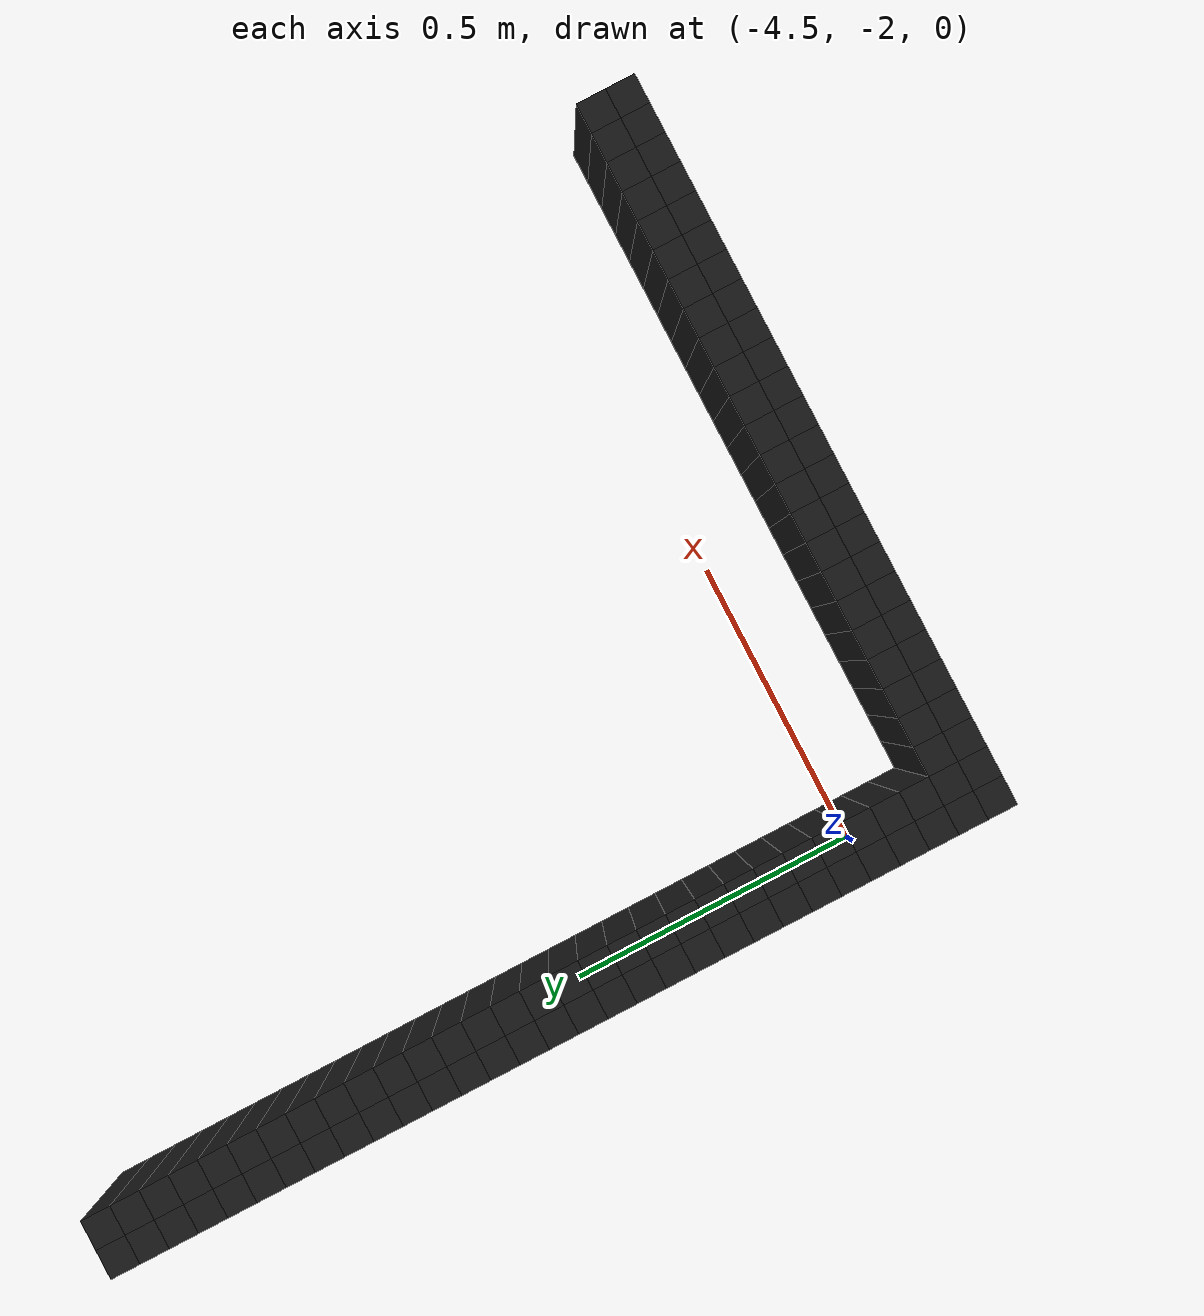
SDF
<sdf version="1.6">
 <model name="obstacle_0_181">
  <pose>-4.51 -0.7000000000000002 1.0 0 0 0</pose>
  <static>true</static>
  <link name="box_link">
   <collision name="box_collision"><geometry><box><size>0.05 0.05 2.0</size></box></geometry></collision>
   <visual name="box_visual">
    <geometry><box><size>0.05 0.05 2.0</size></box></geometry>
    <material><ambient>0 0 0 1</ambient><diffuse>0.1 0.1 0.1 1</diffuse></material>
   </visual>
  </link>
 </model>
 <model name="obstacle_1_181">
  <pose>-4.46 -0.7000000000000002 1.0 0 0 0</pose>
  <static>true</static>
  <link name="box_link">
   <collision name="box_collision"><geometry><box><size>0.05 0.05 2.0</size></box></geometry></collision>
   <visual name="box_visual">
    <geometry><box><size>0.05 0.05 2.0</size></box></geometry>
    <material><ambient>0 0 0 1</ambient><diffuse>0.1 0.1 0.1 1</diffuse></material>
   </visual>
  </link>
 </model>
 <model name="obstacle_0_182">
  <pose>-4.51 -0.75 1.0 0 0 0</pose>
  <static>true</static>
  <link name="box_link">
   <collision name="box_collision"><geometry><box><size>0.05 0.05 2.0</size></box></geometry></collision>
   <visual name="box_visual">
    <geometry><box><size>0.05 0.05 2.0</size></box></geometry>
    <material><ambient>0 0 0 1</ambient><diffuse>0.1 0.1 0.1 1</diffuse></material>
   </visual>
  </link>
 </model>
 <model name="obstacle_1_182">
  <pose>-4.46 -0.75 1.0 0 0 0</pose>
  <static>true</static>
  <link name="box_link">
   <collision name="box_collision"><geometry><box><size>0.05 0.05 2.0</size></box></geometry></collision>
   <visual name="box_visual">
    <geometry><box><size>0.05 0.05 2.0</size></box></geometry>
    <material><ambient>0 0 0 1</ambient><diffuse>0.1 0.1 0.1 1</diffuse></material>
   </visual>
  </link>
 </model>
 <model name="obstacle_0_183">
  <pose>-4.51 -0.8 1.0 0 0 0</pose>
  <static>true</static>
  <link name="box_link">
   <collision name="box_collision"><geometry><box><size>0.05 0.05 2.0</size></box></geometry></collision>
   <visual name="box_visual">
    <geometry><box><size>0.05 0.05 2.0</size></box></geometry>
    <material><ambient>0 0 0 1</ambient><diffuse>0.1 0.1 0.1 1</diffuse></material>
   </visual>
  </link>
 </model>
 <model name="obstacle_1_183">
  <pose>-4.46 -0.8 1.0 0 0 0</pose>
  <static>true</static>
  <link name="box_link">
   <collision name="box_collision"><geometry><box><size>0.05 0.05 2.0</size></box></geometry></collision>
   <visual name="box_visual">
    <geometry><box><size>0.05 0.05 2.0</size></box></geometry>
    <material><ambient>0 0 0 1</ambient><diffuse>0.1 0.1 0.1 1</diffuse></material>
   </visual>
  </link>
 </model>
 <model name="obstacle_0_184">
  <pose>-4.51 -0.8500000000000001 1.0 0 0 0</pose>
  <static>true</static>
  <link name="box_link">
   <collision name="box_collision"><geometry><box><size>0.05 0.05 2.0</size></box></geometry></collision>
   <visual name="box_visual">
    <geometry><box><size>0.05 0.05 2.0</size></box></geometry>
    <material><ambient>0 0 0 1</ambient><diffuse>0.1 0.1 0.1 1</diffuse></material>
   </visual>
  </link>
 </model>
 <model name="obstacle_1_184">
  <pose>-4.46 -0.8500000000000001 1.0 0 0 0</pose>
  <static>true</static>
  <link name="box_link">
   <collision name="box_collision"><geometry><box><size>0.05 0.05 2.0</size></box></geometry></collision>
   <visual name="box_visual">
    <geometry><box><size>0.05 0.05 2.0</size></box></geometry>
    <material><ambient>0 0 0 1</ambient><diffuse>0.1 0.1 0.1 1</diffuse></material>
   </visual>
  </link>
 </model>
 <model name="obstacle_0_185">
  <pose>-4.51 -0.9000000000000001 1.0 0 0 0</pose>
  <static>true</static>
  <link name="box_link">
   <collision name="box_collision"><geometry><box><size>0.05 0.05 2.0</size></box></geometry></collision>
   <visual name="box_visual">
    <geometry><box><size>0.05 0.05 2.0</size></box></geometry>
    <material><ambient>0 0 0 1</ambient><diffuse>0.1 0.1 0.1 1</diffuse></material>
   </visual>
  </link>
 </model>
 <model name="obstacle_1_185">
  <pose>-4.46 -0.9000000000000001 1.0 0 0 0</pose>
  <static>true</static>
  <link name="box_link">
   <collision name="box_collision"><geometry><box><size>0.05 0.05 2.0</size></box></geometry></collision>
   <visual name="box_visual">
    <geometry><box><size>0.05 0.05 2.0</size></box></geometry>
    <material><ambient>0 0 0 1</ambient><diffuse>0.1 0.1 0.1 1</diffuse></material>
   </visual>
  </link>
 </model>
 <model name="obstacle_0_186">
  <pose>-4.51 -0.9500000000000002 1.0 0 0 0</pose>
  <static>true</static>
  <link name="box_link">
   <collision name="box_collision"><geometry><box><size>0.05 0.05 2.0</size></box></geometry></collision>
   <visual name="box_visual">
    <geometry><box><size>0.05 0.05 2.0</size></box></geometry>
    <material><ambient>0 0 0 1</ambient><diffuse>0.1 0.1 0.1 1</diffuse></material>
   </visual>
  </link>
 </model>
 <model name="obstacle_1_186">
  <pose>-4.46 -0.9500000000000002 1.0 0 0 0</pose>
  <static>true</static>
  <link name="box_link">
   <collision name="box_collision"><geometry><box><size>0.05 0.05 2.0</size></box></geometry></collision>
   <visual name="box_visual">
    <geometry><box><size>0.05 0.05 2.0</size></box></geometry>
    <material><ambient>0 0 0 1</ambient><diffuse>0.1 0.1 0.1 1</diffuse></material>
   </visual>
  </link>
 </model>
 <model name="obstacle_0_187">
  <pose>-4.51 -1.0 1.0 0 0 0</pose>
  <static>true</static>
  <link name="box_link">
   <collision name="box_collision"><geometry><box><size>0.05 0.05 2.0</size></box></geometry></collision>
   <visual name="box_visual">
    <geometry><box><size>0.05 0.05 2.0</size></box></geometry>
    <material><ambient>0 0 0 1</ambient><diffuse>0.1 0.1 0.1 1</diffuse></material>
   </visual>
  </link>
 </model>
 <model name="obstacle_1_187">
  <pose>-4.46 -1.0 1.0 0 0 0</pose>
  <static>true</static>
  <link name="box_link">
   <collision name="box_collision"><geometry><box><size>0.05 0.05 2.0</size></box></geometry></collision>
   <visual name="box_visual">
    <geometry><box><size>0.05 0.05 2.0</size></box></geometry>
    <material><ambient>0 0 0 1</ambient><diffuse>0.1 0.1 0.1 1</diffuse></material>
   </visual>
  </link>
 </model>
 <model name="obstacle_0_188">
  <pose>-4.51 -1.05 1.0 0 0 0</pose>
  <static>true</static>
  <link name="box_link">
   <collision name="box_collision"><geometry><box><size>0.05 0.05 2.0</size></box></geometry></collision>
   <visual name="box_visual">
    <geometry><box><size>0.05 0.05 2.0</size></box></geometry>
    <material><ambient>0 0 0 1</ambient><diffuse>0.1 0.1 0.1 1</diffuse></material>
   </visual>
  </link>
 </model>
 <model name="obstacle_1_188">
  <pose>-4.46 -1.05 1.0 0 0 0</pose>
  <static>true</static>
  <link name="box_link">
   <collision name="box_collision"><geometry><box><size>0.05 0.05 2.0</size></box></geometry></collision>
   <visual name="box_visual">
    <geometry><box><size>0.05 0.05 2.0</size></box></geometry>
    <material><ambient>0 0 0 1</ambient><diffuse>0.1 0.1 0.1 1</diffuse></material>
   </visual>
  </link>
 </model>
 <model name="obstacle_0_189">
  <pose>-4.51 -1.1 1.0 0 0 0</pose>
  <static>true</static>
  <link name="box_link">
   <collision name="box_collision"><geometry><box><size>0.05 0.05 2.0</size></box></geometry></collision>
   <visual name="box_visual">
    <geometry><box><size>0.05 0.05 2.0</size></box></geometry>
    <material><ambient>0 0 0 1</ambient><diffuse>0.1 0.1 0.1 1</diffuse></material>
   </visual>
  </link>
 </model>
 <model name="obstacle_1_189">
  <pose>-4.46 -1.1 1.0 0 0 0</pose>
  <static>true</static>
  <link name="box_link">
   <collision name="box_collision"><geometry><box><size>0.05 0.05 2.0</size></box></geometry></collision>
   <visual name="box_visual">
    <geometry><box><size>0.05 0.05 2.0</size></box></geometry>
    <material><ambient>0 0 0 1</ambient><diffuse>0.1 0.1 0.1 1</diffuse></material>
   </visual>
  </link>
 </model>
 <model name="obstacle_0_190">
  <pose>-4.51 -1.1500000000000001 1.0 0 0 0</pose>
  <static>true</static>
  <link name="box_link">
   <collision name="box_collision"><geometry><box><size>0.05 0.05 2.0</size></box></geometry></collision>
   <visual name="box_visual">
    <geometry><box><size>0.05 0.05 2.0</size></box></geometry>
    <material><ambient>0 0 0 1</ambient><diffuse>0.1 0.1 0.1 1</diffuse></material>
   </visual>
  </link>
 </model>
 <model name="obstacle_1_190">
  <pose>-4.46 -1.1500000000000001 1.0 0 0 0</pose>
  <static>true</static>
  <link name="box_link">
   <collision name="box_collision"><geometry><box><size>0.05 0.05 2.0</size></box></geometry></collision>
   <visual name="box_visual">
    <geometry><box><size>0.05 0.05 2.0</size></box></geometry>
    <material><ambient>0 0 0 1</ambient><diffuse>0.1 0.1 0.1 1</diffuse></material>
   </visual>
  </link>
 </model>
 <model name="obstacle_0_191">
  <pose>-4.51 -1.2000000000000002 1.0 0 0 0</pose>
  <static>true</static>
  <link name="box_link">
   <collision name="box_collision"><geometry><box><size>0.05 0.05 2.0</size></box></geometry></collision>
   <visual name="box_visual">
    <geometry><box><size>0.05 0.05 2.0</size></box></geometry>
    <material><ambient>0 0 0 1</ambient><diffuse>0.1 0.1 0.1 1</diffuse></material>
   </visual>
  </link>
 </model>
 <model name="obstacle_1_191">
  <pose>-4.46 -1.2000000000000002 1.0 0 0 0</pose>
  <static>true</static>
  <link name="box_link">
   <collision name="box_collision"><geometry><box><size>0.05 0.05 2.0</size></box></geometry></collision>
   <visual name="box_visual">
    <geometry><box><size>0.05 0.05 2.0</size></box></geometry>
    <material><ambient>0 0 0 1</ambient><diffuse>0.1 0.1 0.1 1</diffuse></material>
   </visual>
  </link>
 </model>
 <model name="obstacle_0_192">
  <pose>-4.51 -1.25 1.0 0 0 0</pose>
  <static>true</static>
  <link name="box_link">
   <collision name="box_collision"><geometry><box><size>0.05 0.05 2.0</size></box></geometry></collision>
   <visual name="box_visual">
    <geometry><box><size>0.05 0.05 2.0</size></box></geometry>
    <material><ambient>0 0 0 1</ambient><diffuse>0.1 0.1 0.1 1</diffuse></material>
   </visual>
  </link>
 </model>
 <model name="obstacle_1_192">
  <pose>-4.46 -1.25 1.0 0 0 0</pose>
  <static>true</static>
  <link name="box_link">
   <collision name="box_collision"><geometry><box><size>0.05 0.05 2.0</size></box></geometry></collision>
   <visual name="box_visual">
    <geometry><box><size>0.05 0.05 2.0</size></box></geometry>
    <material><ambient>0 0 0 1</ambient><diffuse>0.1 0.1 0.1 1</diffuse></material>
   </visual>
  </link>
 </model>
 <model name="obstacle_0_193">
  <pose>-4.51 -1.3000000000000003 1.0 0 0 0</pose>
  <static>true</static>
  <link name="box_link">
   <collision name="box_collision"><geometry><box><size>0.05 0.05 2.0</size></box></geometry></collision>
   <visual name="box_visual">
    <geometry><box><size>0.05 0.05 2.0</size></box></geometry>
    <material><ambient>0 0 0 1</ambient><diffuse>0.1 0.1 0.1 1</diffuse></material>
   </visual>
  </link>
 </model>
 <model name="obstacle_1_193">
  <pose>-4.46 -1.3000000000000003 1.0 0 0 0</pose>
  <static>true</static>
  <link name="box_link">
   <collision name="box_collision"><geometry><box><size>0.05 0.05 2.0</size></box></geometry></collision>
   <visual name="box_visual">
    <geometry><box><size>0.05 0.05 2.0</size></box></geometry>
    <material><ambient>0 0 0 1</ambient><diffuse>0.1 0.1 0.1 1</diffuse></material>
   </visual>
  </link>
 </model>
 <model name="obstacle_0_194">
  <pose>-4.51 -1.35 1.0 0 0 0</pose>
  <static>true</static>
  <link name="box_link">
   <collision name="box_collision"><geometry><box><size>0.05 0.05 2.0</size></box></geometry></collision>
   <visual name="box_visual">
    <geometry><box><size>0.05 0.05 2.0</size></box></geometry>
    <material><ambient>0 0 0 1</ambient><diffuse>0.1 0.1 0.1 1</diffuse></material>
   </visual>
  </link>
 </model>
 <model name="obstacle_1_194">
  <pose>-4.46 -1.35 1.0 0 0 0</pose>
  <static>true</static>
  <link name="box_link">
   <collision name="box_collision"><geometry><box><size>0.05 0.05 2.0</size></box></geometry></collision>
   <visual name="box_visual">
    <geometry><box><size>0.05 0.05 2.0</size></box></geometry>
    <material><ambient>0 0 0 1</ambient><diffuse>0.1 0.1 0.1 1</diffuse></material>
   </visual>
  </link>
 </model>
 <model name="obstacle_0_195">
  <pose>-4.51 -1.4000000000000001 1.0 0 0 0</pose>
  <static>true</static>
  <link name="box_link">
   <collision name="box_collision"><geometry><box><size>0.05 0.05 2.0</size></box></geometry></collision>
   <visual name="box_visual">
    <geometry><box><size>0.05 0.05 2.0</size></box></geometry>
    <material><ambient>0 0 0 1</ambient><diffuse>0.1 0.1 0.1 1</diffuse></material>
   </visual>
  </link>
 </model>
 <model name="obstacle_1_195">
  <pose>-4.46 -1.4000000000000001 1.0 0 0 0</pose>
  <static>true</static>
  <link name="box_link">
   <collision name="box_collision"><geometry><box><size>0.05 0.05 2.0</size></box></geometry></collision>
   <visual name="box_visual">
    <geometry><box><size>0.05 0.05 2.0</size></box></geometry>
    <material><ambient>0 0 0 1</ambient><diffuse>0.1 0.1 0.1 1</diffuse></material>
   </visual>
  </link>
 </model>
 <model name="obstacle_0_196">
  <pose>-4.51 -1.4500000000000002 1.0 0 0 0</pose>
  <static>true</static>
  <link name="box_link">
   <collision name="box_collision"><geometry><box><size>0.05 0.05 2.0</size></box></geometry></collision>
   <visual name="box_visual">
    <geometry><box><size>0.05 0.05 2.0</size></box></geometry>
    <material><ambient>0 0 0 1</ambient><diffuse>0.1 0.1 0.1 1</diffuse></material>
   </visual>
  </link>
 </model>
 <model name="obstacle_1_196">
  <pose>-4.46 -1.4500000000000002 1.0 0 0 0</pose>
  <static>true</static>
  <link name="box_link">
   <collision name="box_collision"><geometry><box><size>0.05 0.05 2.0</size></box></geometry></collision>
   <visual name="box_visual">
    <geometry><box><size>0.05 0.05 2.0</size></box></geometry>
    <material><ambient>0 0 0 1</ambient><diffuse>0.1 0.1 0.1 1</diffuse></material>
   </visual>
  </link>
 </model>
 <model name="obstacle_0_197">
  <pose>-4.51 -1.5 1.0 0 0 0</pose>
  <static>true</static>
  <link name="box_link">
   <collision name="box_collision"><geometry><box><size>0.05 0.05 2.0</size></box></geometry></collision>
   <visual name="box_visual">
    <geometry><box><size>0.05 0.05 2.0</size></box></geometry>
    <material><ambient>0 0 0 1</ambient><diffuse>0.1 0.1 0.1 1</diffuse></material>
   </visual>
  </link>
 </model>
 <model name="obstacle_1_197">
  <pose>-4.46 -1.5 1.0 0 0 0</pose>
  <static>true</static>
  <link name="box_link">
   <collision name="box_collision"><geometry><box><size>0.05 0.05 2.0</size></box></geometry></collision>
   <visual name="box_visual">
    <geometry><box><size>0.05 0.05 2.0</size></box></geometry>
    <material><ambient>0 0 0 1</ambient><diffuse>0.1 0.1 0.1 1</diffuse></material>
   </visual>
  </link>
 </model>
 <model name="obstacle_0_198">
  <pose>-4.51 -1.5500000000000003 1.0 0 0 0</pose>
  <static>true</static>
  <link name="box_link">
   <collision name="box_collision"><geometry><box><size>0.05 0.05 2.0</size></box></geometry></collision>
   <visual name="box_visual">
    <geometry><box><size>0.05 0.05 2.0</size></box></geometry>
    <material><ambient>0 0 0 1</ambient><diffuse>0.1 0.1 0.1 1</diffuse></material>
   </visual>
  </link>
 </model>
 <model name="obstacle_1_198">
  <pose>-4.46 -1.5500000000000003 1.0 0 0 0</pose>
  <static>true</static>
  <link name="box_link">
   <collision name="box_collision"><geometry><box><size>0.05 0.05 2.0</size></box></geometry></collision>
   <visual name="box_visual">
    <geometry><box><size>0.05 0.05 2.0</size></box></geometry>
    <material><ambient>0 0 0 1</ambient><diffuse>0.1 0.1 0.1 1</diffuse></material>
   </visual>
  </link>
 </model>
 <model name="obstacle_0_199">
  <pose>-4.51 -1.6 1.0 0 0 0</pose>
  <static>true</static>
  <link name="box_link">
   <collision name="box_collision"><geometry><box><size>0.05 0.05 2.0</size></box></geometry></collision>
   <visual name="box_visual">
    <geometry><box><size>0.05 0.05 2.0</size></box></geometry>
    <material><ambient>0 0 0 1</ambient><diffuse>0.1 0.1 0.1 1</diffuse></material>
   </visual>
  </link>
 </model>
 <model name="obstacle_1_199">
  <pose>-4.46 -1.6 1.0 0 0 0</pose>
  <static>true</static>
  <link name="box_link">
   <collision name="box_collision"><geometry><box><size>0.05 0.05 2.0</size></box></geometry></collision>
   <visual name="box_visual">
    <geometry><box><size>0.05 0.05 2.0</size></box></geometry>
    <material><ambient>0 0 0 1</ambient><diffuse>0.1 0.1 0.1 1</diffuse></material>
   </visual>
  </link>
 </model>
 <model name="obstacle_0_200">
  <pose>-4.51 -1.6500000000000001 1.0 0 0 0</pose>
  <static>true</static>
  <link name="box_link">
   <collision name="box_collision"><geometry><box><size>0.05 0.05 2.0</size></box></geometry></collision>
   <visual name="box_visual">
    <geometry><box><size>0.05 0.05 2.0</size></box></geometry>
    <material><ambient>0 0 0 1</ambient><diffuse>0.1 0.1 0.1 1</diffuse></material>
   </visual>
  </link>
 </model>
 <model name="obstacle_1_200">
  <pose>-4.46 -1.6500000000000001 1.0 0 0 0</pose>
  <static>true</static>
  <link name="box_link">
   <collision name="box_collision"><geometry><box><size>0.05 0.05 2.0</size></box></geometry></collision>
   <visual name="box_visual">
    <geometry><box><size>0.05 0.05 2.0</size></box></geometry>
    <material><ambient>0 0 0 1</ambient><diffuse>0.1 0.1 0.1 1</diffuse></material>
   </visual>
  </link>
 </model>
 <model name="obstacle_0_201">
  <pose>-4.51 -1.7000000000000002 1.0 0 0 0</pose>
  <static>true</static>
  <link name="box_link">
   <collision name="box_collision"><geometry><box><size>0.05 0.05 2.0</size></box></geometry></collision>
   <visual name="box_visual">
    <geometry><box><size>0.05 0.05 2.0</size></box></geometry>
    <material><ambient>0 0 0 1</ambient><diffuse>0.1 0.1 0.1 1</diffuse></material>
   </visual>
  </link>
 </model>
 <model name="obstacle_1_201">
  <pose>-4.46 -1.7000000000000002 1.0 0 0 0</pose>
  <static>true</static>
  <link name="box_link">
   <collision name="box_collision"><geometry><box><size>0.05 0.05 2.0</size></box></geometry></collision>
   <visual name="box_visual">
    <geometry><box><size>0.05 0.05 2.0</size></box></geometry>
    <material><ambient>0 0 0 1</ambient><diffuse>0.1 0.1 0.1 1</diffuse></material>
   </visual>
  </link>
 </model>
 <model name="obstacle_0_202">
  <pose>-4.51 -1.7500000000000002 1.0 0 0 0</pose>
  <static>true</static>
  <link name="box_link">
   <collision name="box_collision"><geometry><box><size>0.05 0.05 2.0</size></box></geometry></collision>
   <visual name="box_visual">
    <geometry><box><size>0.05 0.05 2.0</size></box></geometry>
    <material><ambient>0 0 0 1</ambient><diffuse>0.1 0.1 0.1 1</diffuse></material>
   </visual>
  </link>
 </model>
 <model name="obstacle_1_202">
  <pose>-4.46 -1.7500000000000002 1.0 0 0 0</pose>
  <static>true</static>
  <link name="box_link">
   <collision name="box_collision"><geometry><box><size>0.05 0.05 2.0</size></box></geometry></collision>
   <visual name="box_visual">
    <geometry><box><size>0.05 0.05 2.0</size></box></geometry>
    <material><ambient>0 0 0 1</ambient><diffuse>0.1 0.1 0.1 1</diffuse></material>
   </visual>
  </link>
 </model>
 <model name="obstacle_0_203">
  <pose>-4.51 -1.8000000000000003 1.0 0 0 0</pose>
  <static>true</static>
  <link name="box_link">
   <collision name="box_collision"><geometry><box><size>0.05 0.05 2.0</size></box></geometry></collision>
   <visual name="box_visual">
    <geometry><box><size>0.05 0.05 2.0</size></box></geometry>
    <material><ambient>0 0 0 1</ambient><diffuse>0.1 0.1 0.1 1</diffuse></material>
   </visual>
  </link>
 </model>
 <model name="obstacle_1_203">
  <pose>-4.46 -1.8000000000000003 1.0 0 0 0</pose>
  <static>true</static>
  <link name="box_link">
   <collision name="box_collision"><geometry><box><size>0.05 0.05 2.0</size></box></geometry></collision>
   <visual name="box_visual">
    <geometry><box><size>0.05 0.05 2.0</size></box></geometry>
    <material><ambient>0 0 0 1</ambient><diffuse>0.1 0.1 0.1 1</diffuse></material>
   </visual>
  </link>
 </model>
 <model name="obstacle_0_204">
  <pose>-4.51 -1.85 1.0 0 0 0</pose>
  <static>true</static>
  <link name="box_link">
   <collision name="box_collision"><geometry><box><size>0.05 0.05 2.0</size></box></geometry></collision>
   <visual name="box_visual">
    <geometry><box><size>0.05 0.05 2.0</size></box></geometry>
    <material><ambient>0 0 0 1</ambient><diffuse>0.1 0.1 0.1 1</diffuse></material>
   </visual>
  </link>
 </model>
 <model name="obstacle_1_204">
  <pose>-4.46 -1.85 1.0 0 0 0</pose>
  <static>true</static>
  <link name="box_link">
   <collision name="box_collision"><geometry><box><size>0.05 0.05 2.0</size></box></geometry></collision>
   <visual name="box_visual">
    <geometry><box><size>0.05 0.05 2.0</size></box></geometry>
    <material><ambient>0 0 0 1</ambient><diffuse>0.1 0.1 0.1 1</diffuse></material>
   </visual>
  </link>
 </model>
 <model name="obstacle_0_205">
  <pose>-4.51 -1.9000000000000001 1.0 0 0 0</pose>
  <static>true</static>
  <link name="box_link">
   <collision name="box_collision"><geometry><box><size>0.05 0.05 2.0</size></box></geometry></collision>
   <visual name="box_visual">
    <geometry><box><size>0.05 0.05 2.0</size></box></geometry>
    <material><ambient>0 0 0 1</ambient><diffuse>0.1 0.1 0.1 1</diffuse></material>
   </visual>
  </link>
 </model>
 <model name="obstacle_1_205">
  <pose>-4.46 -1.9000000000000001 1.0 0 0 0</pose>
  <static>true</static>
  <link name="box_link">
   <collision name="box_collision"><geometry><box><size>0.05 0.05 2.0</size></box></geometry></collision>
   <visual name="box_visual">
    <geometry><box><size>0.05 0.05 2.0</size></box></geometry>
    <material><ambient>0 0 0 1</ambient><diffuse>0.1 0.1 0.1 1</diffuse></material>
   </visual>
  </link>
 </model>
 <model name="obstacle_0_206">
  <pose>-4.51 -1.9500000000000002 1.0 0 0 0</pose>
  <static>true</static>
  <link name="box_link">
   <collision name="box_collision"><geometry><box><size>0.05 0.05 2.0</size></box></geometry></collision>
   <visual name="box_visual">
    <geometry><box><size>0.05 0.05 2.0</size></box></geometry>
    <material><ambient>0 0 0 1</ambient><diffuse>0.1 0.1 0.1 1</diffuse></material>
   </visual>
  </link>
 </model>
 <model name="obstacle_1_206">
  <pose>-4.46 -1.9500000000000002 1.0 0 0 0</pose>
  <static>true</static>
  <link name="box_link">
   <collision name="box_collision"><geometry><box><size>0.05 0.05 2.0</size></box></geometry></collision>
   <visual name="box_visual">
    <geometry><box><size>0.05 0.05 2.0</size></box></geometry>
    <material><ambient>0 0 0 1</ambient><diffuse>0.1 0.1 0.1 1</diffuse></material>
   </visual>
  </link>
 </model>
 <model name="obstacle_0_207">
  <pose>-4.51 -2.0 1.0 0 0 0</pose>
  <static>true</static>
  <link name="box_link">
   <collision name="box_collision"><geometry><box><size>0.05 0.05 2.0</size></box></geometry></collision>
   <visual name="box_visual">
    <geometry><box><size>0.05 0.05 2.0</size></box></geometry>
    <material><ambient>0 0 0 1</ambient><diffuse>0.1 0.1 0.1 1</diffuse></material>
   </visual>
  </link>
 </model>
 <model name="obstacle_1_207">
  <pose>-4.46 -2.0 1.0 0 0 0</pose>
  <static>true</static>
  <link name="box_link">
   <collision name="box_collision"><geometry><box><size>0.05 0.05 2.0</size></box></geometry></collision>
   <visual name="box_visual">
    <geometry><box><size>0.05 0.05 2.0</size></box></geometry>
    <material><ambient>0 0 0 1</ambient><diffuse>0.1 0.1 0.1 1</diffuse></material>
   </visual>
  </link>
 </model>
 <model name="obstacle_0_208">
  <pose>-4.51 -2.0500000000000003 1.0 0 0 0</pose>
  <static>true</static>
  <link name="box_link">
   <collision name="box_collision"><geometry><box><size>0.05 0.05 2.0</size></box></geometry></collision>
   <visual name="box_visual">
    <geometry><box><size>0.05 0.05 2.0</size></box></geometry>
    <material><ambient>0 0 0 1</ambient><diffuse>0.1 0.1 0.1 1</diffuse></material>
   </visual>
  </link>
 </model>
 <model name="obstacle_1_208">
  <pose>-4.46 -2.0500000000000003 1.0 0 0 0</pose>
  <static>true</static>
  <link name="box_link">
   <collision name="box_collision"><geometry><box><size>0.05 0.05 2.0</size></box></geometry></collision>
   <visual name="box_visual">
    <geometry><box><size>0.05 0.05 2.0</size></box></geometry>
    <material><ambient>0 0 0 1</ambient><diffuse>0.1 0.1 0.1 1</diffuse></material>
   </visual>
  </link>
 </model>
 <model name="obstacle_0_209">
  <pose>-4.51 -2.1 1.0 0 0 0</pose>
  <static>true</static>
  <link name="box_link">
   <collision name="box_collision"><geometry><box><size>0.05 0.05 2.0</size></box></geometry></collision>
   <visual name="box_visual">
    <geometry><box><size>0.05 0.05 2.0</size></box></geometry>
    <material><ambient>0 0 0 1</ambient><diffuse>0.1 0.1 0.1 1</diffuse></material>
   </visual>
  </link>
 </model>
 <model name="obstacle_1_209">
  <pose>-4.46 -2.1 1.0 0 0 0</pose>
  <static>true</static>
  <link name="box_link">
   <collision name="box_collision"><geometry><box><size>0.05 0.05 2.0</size></box></geometry></collision>
   <visual name="box_visual">
    <geometry><box><size>0.05 0.05 2.0</size></box></geometry>
    <material><ambient>0 0 0 1</ambient><diffuse>0.1 0.1 0.1 1</diffuse></material>
   </visual>
  </link>
 </model>
 <model name="obstacle_0_210">
  <pose>-4.51 -2.1500000000000004 1.0 0 0 0</pose>
  <static>true</static>
  <link name="box_link">
   <collision name="box_collision"><geometry><box><size>0.05 0.05 2.0</size></box></geometry></collision>
   <visual name="box_visual">
    <geometry><box><size>0.05 0.05 2.0</size></box></geometry>
    <material><ambient>0 0 0 1</ambient><diffuse>0.1 0.1 0.1 1</diffuse></material>
   </visual>
  </link>
 </model>
 <model name="obstacle_1_210">
  <pose>-4.46 -2.1500000000000004 1.0 0 0 0</pose>
  <static>true</static>
  <link name="box_link">
   <collision name="box_collision"><geometry><box><size>0.05 0.05 2.0</size></box></geometry></collision>
   <visual name="box_visual">
    <geometry><box><size>0.05 0.05 2.0</size></box></geometry>
    <material><ambient>0 0 0 1</ambient><diffuse>0.1 0.1 0.1 1</diffuse></material>
   </visual>
  </link>
 </model>
 <model name="obstacle_2_210">
  <pose>-4.41 -2.1500000000000004 1.0 0 0 0</pose>
  <static>true</static>
  <link name="box_link">
   <collision name="box_collision"><geometry><box><size>0.05 0.05 2.0</size></box></geometry></collision>
   <visual name="box_visual">
    <geometry><box><size>0.05 0.05 2.0</size></box></geometry>
    <material><ambient>0 0 0 1</ambient><diffuse>0.1 0.1 0.1 1</diffuse></material>
   </visual>
  </link>
 </model>
 <model name="obstacle_3_210">
  <pose>-4.359999999999999 -2.1500000000000004 1.0 0 0 0</pose>
  <static>true</static>
  <link name="box_link">
   <collision name="box_collision"><geometry><box><size>0.05 0.05 2.0</size></box></geometry></collision>
   <visual name="box_visual">
    <geometry><box><size>0.05 0.05 2.0</size></box></geometry>
    <material><ambient>0 0 0 1</ambient><diffuse>0.1 0.1 0.1 1</diffuse></material>
   </visual>
  </link>
 </model>
 <model name="obstacle_4_210">
  <pose>-4.31 -2.1500000000000004 1.0 0 0 0</pose>
  <static>true</static>
  <link name="box_link">
   <collision name="box_collision"><geometry><box><size>0.05 0.05 2.0</size></box></geometry></collision>
   <visual name="box_visual">
    <geometry><box><size>0.05 0.05 2.0</size></box></geometry>
    <material><ambient>0 0 0 1</ambient><diffuse>0.1 0.1 0.1 1</diffuse></material>
   </visual>
  </link>
 </model>
 <model name="obstacle_5_210">
  <pose>-4.26 -2.1500000000000004 1.0 0 0 0</pose>
  <static>true</static>
  <link name="box_link">
   <collision name="box_collision"><geometry><box><size>0.05 0.05 2.0</size></box></geometry></collision>
   <visual name="box_visual">
    <geometry><box><size>0.05 0.05 2.0</size></box></geometry>
    <material><ambient>0 0 0 1</ambient><diffuse>0.1 0.1 0.1 1</diffuse></material>
   </visual>
  </link>
 </model>
 <model name="obstacle_6_210">
  <pose>-4.21 -2.1500000000000004 1.0 0 0 0</pose>
  <static>true</static>
  <link name="box_link">
   <collision name="box_collision"><geometry><box><size>0.05 0.05 2.0</size></box></geometry></collision>
   <visual name="box_visual">
    <geometry><box><size>0.05 0.05 2.0</size></box></geometry>
    <material><ambient>0 0 0 1</ambient><diffuse>0.1 0.1 0.1 1</diffuse></material>
   </visual>
  </link>
 </model>
 <model name="obstacle_7_210">
  <pose>-4.16 -2.1500000000000004 1.0 0 0 0</pose>
  <static>true</static>
  <link name="box_link">
   <collision name="box_collision"><geometry><box><size>0.05 0.05 2.0</size></box></geometry></collision>
   <visual name="box_visual">
    <geometry><box><size>0.05 0.05 2.0</size></box></geometry>
    <material><ambient>0 0 0 1</ambient><diffuse>0.1 0.1 0.1 1</diffuse></material>
   </visual>
  </link>
 </model>
 <model name="obstacle_8_210">
  <pose>-4.109999999999999 -2.1500000000000004 1.0 0 0 0</pose>
  <static>true</static>
  <link name="box_link">
   <collision name="box_collision"><geometry><box><size>0.05 0.05 2.0</size></box></geometry></collision>
   <visual name="box_visual">
    <geometry><box><size>0.05 0.05 2.0</size></box></geometry>
    <material><ambient>0 0 0 1</ambient><diffuse>0.1 0.1 0.1 1</diffuse></material>
   </visual>
  </link>
 </model>
 <model name="obstacle_9_210">
  <pose>-4.06 -2.1500000000000004 1.0 0 0 0</pose>
  <static>true</static>
  <link name="box_link">
   <collision name="box_collision"><geometry><box><size>0.05 0.05 2.0</size></box></geometry></collision>
   <visual name="box_visual">
    <geometry><box><size>0.05 0.05 2.0</size></box></geometry>
    <material><ambient>0 0 0 1</ambient><diffuse>0.1 0.1 0.1 1</diffuse></material>
   </visual>
  </link>
 </model>
 <model name="obstacle_10_210">
  <pose>-4.01 -2.1500000000000004 1.0 0 0 0</pose>
  <static>true</static>
  <link name="box_link">
   <collision name="box_collision"><geometry><box><size>0.05 0.05 2.0</size></box></geometry></collision>
   <visual name="box_visual">
    <geometry><box><size>0.05 0.05 2.0</size></box></geometry>
    <material><ambient>0 0 0 1</ambient><diffuse>0.1 0.1 0.1 1</diffuse></material>
   </visual>
  </link>
 </model>
 <model name="obstacle_11_210">
  <pose>-3.96 -2.1500000000000004 1.0 0 0 0</pose>
  <static>true</static>
  <link name="box_link">
   <collision name="box_collision"><geometry><box><size>0.05 0.05 2.0</size></box></geometry></collision>
   <visual name="box_visual">
    <geometry><box><size>0.05 0.05 2.0</size></box></geometry>
    <material><ambient>0 0 0 1</ambient><diffuse>0.1 0.1 0.1 1</diffuse></material>
   </visual>
  </link>
 </model>
 <model name="obstacle_12_210">
  <pose>-3.9099999999999997 -2.1500000000000004 1.0 0 0 0</pose>
  <static>true</static>
  <link name="box_link">
   <collision name="box_collision"><geometry><box><size>0.05 0.05 2.0</size></box></geometry></collision>
   <visual name="box_visual">
    <geometry><box><size>0.05 0.05 2.0</size></box></geometry>
    <material><ambient>0 0 0 1</ambient><diffuse>0.1 0.1 0.1 1</diffuse></material>
   </visual>
  </link>
 </model>
 <model name="obstacle_13_210">
  <pose>-3.86 -2.1500000000000004 1.0 0 0 0</pose>
  <static>true</static>
  <link name="box_link">
   <collision name="box_collision"><geometry><box><size>0.05 0.05 2.0</size></box></geometry></collision>
   <visual name="box_visual">
    <geometry><box><size>0.05 0.05 2.0</size></box></geometry>
    <material><ambient>0 0 0 1</ambient><diffuse>0.1 0.1 0.1 1</diffuse></material>
   </visual>
  </link>
 </model>
 <model name="obstacle_14_210">
  <pose>-3.8099999999999996 -2.1500000000000004 1.0 0 0 0</pose>
  <static>true</static>
  <link name="box_link">
   <collision name="box_collision"><geometry><box><size>0.05 0.05 2.0</size></box></geometry></collision>
   <visual name="box_visual">
    <geometry><box><size>0.05 0.05 2.0</size></box></geometry>
    <material><ambient>0 0 0 1</ambient><diffuse>0.1 0.1 0.1 1</diffuse></material>
   </visual>
  </link>
 </model>
 <model name="obstacle_15_210">
  <pose>-3.76 -2.1500000000000004 1.0 0 0 0</pose>
  <static>true</static>
  <link name="box_link">
   <collision name="box_collision"><geometry><box><size>0.05 0.05 2.0</size></box></geometry></collision>
   <visual name="box_visual">
    <geometry><box><size>0.05 0.05 2.0</size></box></geometry>
    <material><ambient>0 0 0 1</ambient><diffuse>0.1 0.1 0.1 1</diffuse></material>
   </visual>
  </link>
 </model>
 <model name="obstacle_16_210">
  <pose>-3.71 -2.1500000000000004 1.0 0 0 0</pose>
  <static>true</static>
  <link name="box_link">
   <collision name="box_collision"><geometry><box><size>0.05 0.05 2.0</size></box></geometry></collision>
   <visual name="box_visual">
    <geometry><box><size>0.05 0.05 2.0</size></box></geometry>
    <material><ambient>0 0 0 1</ambient><diffuse>0.1 0.1 0.1 1</diffuse></material>
   </visual>
  </link>
 </model>
 <model name="obstacle_17_210">
  <pose>-3.6599999999999997 -2.1500000000000004 1.0 0 0 0</pose>
  <static>true</static>
  <link name="box_link">
   <collision name="box_collision"><geometry><box><size>0.05 0.05 2.0</size></box></geometry></collision>
   <visual name="box_visual">
    <geometry><box><size>0.05 0.05 2.0</size></box></geometry>
    <material><ambient>0 0 0 1</ambient><diffuse>0.1 0.1 0.1 1</diffuse></material>
   </visual>
  </link>
 </model>
 <model name="obstacle_18_210">
  <pose>-3.61 -2.1500000000000004 1.0 0 0 0</pose>
  <static>true</static>
  <link name="box_link">
   <collision name="box_collision"><geometry><box><size>0.05 0.05 2.0</size></box></geometry></collision>
   <visual name="box_visual">
    <geometry><box><size>0.05 0.05 2.0</size></box></geometry>
    <material><ambient>0 0 0 1</ambient><diffuse>0.1 0.1 0.1 1</diffuse></material>
   </visual>
  </link>
 </model>
 <model name="obstacle_19_210">
  <pose>-3.5599999999999996 -2.1500000000000004 1.0 0 0 0</pose>
  <static>true</static>
  <link name="box_link">
   <collision name="box_collision"><geometry><box><size>0.05 0.05 2.0</size></box></geometry></collision>
   <visual name="box_visual">
    <geometry><box><size>0.05 0.05 2.0</size></box></geometry>
    <material><ambient>0 0 0 1</ambient><diffuse>0.1 0.1 0.1 1</diffuse></material>
   </visual>
  </link>
 </model>
 <model name="obstacle_20_210">
  <pose>-3.51 -2.1500000000000004 1.0 0 0 0</pose>
  <static>true</static>
  <link name="box_link">
   <collision name="box_collision"><geometry><box><size>0.05 0.05 2.0</size></box></geometry></collision>
   <visual name="box_visual">
    <geometry><box><size>0.05 0.05 2.0</size></box></geometry>
    <material><ambient>0 0 0 1</ambient><diffuse>0.1 0.1 0.1 1</diffuse></material>
   </visual>
  </link>
 </model>
 <model name="obstacle_21_210">
  <pose>-3.46 -2.1500000000000004 1.0 0 0 0</pose>
  <static>true</static>
  <link name="box_link">
   <collision name="box_collision"><geometry><box><size>0.05 0.05 2.0</size></box></geometry></collision>
   <visual name="box_visual">
    <geometry><box><size>0.05 0.05 2.0</size></box></geometry>
    <material><ambient>0 0 0 1</ambient><diffuse>0.1 0.1 0.1 1</diffuse></material>
   </visual>
  </link>
 </model>
 <model name="obstacle_22_210">
  <pose>-3.4099999999999997 -2.1500000000000004 1.0 0 0 0</pose>
  <static>true</static>
  <link name="box_link">
   <collision name="box_collision"><geometry><box><size>0.05 0.05 2.0</size></box></geometry></collision>
   <visual name="box_visual">
    <geometry><box><size>0.05 0.05 2.0</size></box></geometry>
    <material><ambient>0 0 0 1</ambient><diffuse>0.1 0.1 0.1 1</diffuse></material>
   </visual>
  </link>
 </model>
 <model name="obstacle_23_210">
  <pose>-3.3599999999999994 -2.1500000000000004 1.0 0 0 0</pose>
  <static>true</static>
  <link name="box_link">
   <collision name="box_collision"><geometry><box><size>0.05 0.05 2.0</size></box></geometry></collision>
   <visual name="box_visual">
    <geometry><box><size>0.05 0.05 2.0</size></box></geometry>
    <material><ambient>0 0 0 1</ambient><diffuse>0.1 0.1 0.1 1</diffuse></material>
   </visual>
  </link>
 </model>
 <model name="obstacle_24_210">
  <pose>-3.3099999999999996 -2.1500000000000004 1.0 0 0 0</pose>
  <static>true</static>
  <link name="box_link">
   <collision name="box_collision"><geometry><box><size>0.05 0.05 2.0</size></box></geometry></collision>
   <visual name="box_visual">
    <geometry><box><size>0.05 0.05 2.0</size></box></geometry>
    <material><ambient>0 0 0 1</ambient><diffuse>0.1 0.1 0.1 1</diffuse></material>
   </visual>
  </link>
 </model>
 <model name="obstacle_0_211">
  <pose>-4.51 -2.2 1.0 0 0 0</pose>
  <static>true</static>
  <link name="box_link">
   <collision name="box_collision"><geometry><box><size>0.05 0.05 2.0</size></box></geometry></collision>
   <visual name="box_visual">
    <geometry><box><size>0.05 0.05 2.0</size></box></geometry>
    <material><ambient>0 0 0 1</ambient><diffuse>0.1 0.1 0.1 1</diffuse></material>
   </visual>
  </link>
 </model>
 <model name="obstacle_1_211">
  <pose>-4.46 -2.2 1.0 0 0 0</pose>
  <static>true</static>
  <link name="box_link">
   <collision name="box_collision"><geometry><box><size>0.05 0.05 2.0</size></box></geometry></collision>
   <visual name="box_visual">
    <geometry><box><size>0.05 0.05 2.0</size></box></geometry>
    <material><ambient>0 0 0 1</ambient><diffuse>0.1 0.1 0.1 1</diffuse></material>
   </visual>
  </link>
 </model>
 <model name="obstacle_2_211">
  <pose>-4.41 -2.2 1.0 0 0 0</pose>
  <static>true</static>
  <link name="box_link">
   <collision name="box_collision"><geometry><box><size>0.05 0.05 2.0</size></box></geometry></collision>
   <visual name="box_visual">
    <geometry><box><size>0.05 0.05 2.0</size></box></geometry>
    <material><ambient>0 0 0 1</ambient><diffuse>0.1 0.1 0.1 1</diffuse></material>
   </visual>
  </link>
 </model>
 <model name="obstacle_3_211">
  <pose>-4.359999999999999 -2.2 1.0 0 0 0</pose>
  <static>true</static>
  <link name="box_link">
   <collision name="box_collision"><geometry><box><size>0.05 0.05 2.0</size></box></geometry></collision>
   <visual name="box_visual">
    <geometry><box><size>0.05 0.05 2.0</size></box></geometry>
    <material><ambient>0 0 0 1</ambient><diffuse>0.1 0.1 0.1 1</diffuse></material>
   </visual>
  </link>
 </model>
 <model name="obstacle_4_211">
  <pose>-4.31 -2.2 1.0 0 0 0</pose>
  <static>true</static>
  <link name="box_link">
   <collision name="box_collision"><geometry><box><size>0.05 0.05 2.0</size></box></geometry></collision>
   <visual name="box_visual">
    <geometry><box><size>0.05 0.05 2.0</size></box></geometry>
    <material><ambient>0 0 0 1</ambient><diffuse>0.1 0.1 0.1 1</diffuse></material>
   </visual>
  </link>
 </model>
 <model name="obstacle_5_211">
  <pose>-4.26 -2.2 1.0 0 0 0</pose>
  <static>true</static>
  <link name="box_link">
   <collision name="box_collision"><geometry><box><size>0.05 0.05 2.0</size></box></geometry></collision>
   <visual name="box_visual">
    <geometry><box><size>0.05 0.05 2.0</size></box></geometry>
    <material><ambient>0 0 0 1</ambient><diffuse>0.1 0.1 0.1 1</diffuse></material>
   </visual>
  </link>
 </model>
 <model name="obstacle_6_211">
  <pose>-4.21 -2.2 1.0 0 0 0</pose>
  <static>true</static>
  <link name="box_link">
   <collision name="box_collision"><geometry><box><size>0.05 0.05 2.0</size></box></geometry></collision>
   <visual name="box_visual">
    <geometry><box><size>0.05 0.05 2.0</size></box></geometry>
    <material><ambient>0 0 0 1</ambient><diffuse>0.1 0.1 0.1 1</diffuse></material>
   </visual>
  </link>
 </model>
 <model name="obstacle_7_211">
  <pose>-4.16 -2.2 1.0 0 0 0</pose>
  <static>true</static>
  <link name="box_link">
   <collision name="box_collision"><geometry><box><size>0.05 0.05 2.0</size></box></geometry></collision>
   <visual name="box_visual">
    <geometry><box><size>0.05 0.05 2.0</size></box></geometry>
    <material><ambient>0 0 0 1</ambient><diffuse>0.1 0.1 0.1 1</diffuse></material>
   </visual>
  </link>
 </model>
 <model name="obstacle_8_211">
  <pose>-4.109999999999999 -2.2 1.0 0 0 0</pose>
  <static>true</static>
  <link name="box_link">
   <collision name="box_collision"><geometry><box><size>0.05 0.05 2.0</size></box></geometry></collision>
   <visual name="box_visual">
    <geometry><box><size>0.05 0.05 2.0</size></box></geometry>
    <material><ambient>0 0 0 1</ambient><diffuse>0.1 0.1 0.1 1</diffuse></material>
   </visual>
  </link>
 </model>
 <model name="obstacle_9_211">
  <pose>-4.06 -2.2 1.0 0 0 0</pose>
  <static>true</static>
  <link name="box_link">
   <collision name="box_collision"><geometry><box><size>0.05 0.05 2.0</size></box></geometry></collision>
   <visual name="box_visual">
    <geometry><box><size>0.05 0.05 2.0</size></box></geometry>
    <material><ambient>0 0 0 1</ambient><diffuse>0.1 0.1 0.1 1</diffuse></material>
   </visual>
  </link>
 </model>
 <model name="obstacle_10_211">
  <pose>-4.01 -2.2 1.0 0 0 0</pose>
  <static>true</static>
  <link name="box_link">
   <collision name="box_collision"><geometry><box><size>0.05 0.05 2.0</size></box></geometry></collision>
   <visual name="box_visual">
    <geometry><box><size>0.05 0.05 2.0</size></box></geometry>
    <material><ambient>0 0 0 1</ambient><diffuse>0.1 0.1 0.1 1</diffuse></material>
   </visual>
  </link>
 </model>
 <model name="obstacle_11_211">
  <pose>-3.96 -2.2 1.0 0 0 0</pose>
  <static>true</static>
  <link name="box_link">
   <collision name="box_collision"><geometry><box><size>0.05 0.05 2.0</size></box></geometry></collision>
   <visual name="box_visual">
    <geometry><box><size>0.05 0.05 2.0</size></box></geometry>
    <material><ambient>0 0 0 1</ambient><diffuse>0.1 0.1 0.1 1</diffuse></material>
   </visual>
  </link>
 </model>
 <model name="obstacle_12_211">
  <pose>-3.9099999999999997 -2.2 1.0 0 0 0</pose>
  <static>true</static>
  <link name="box_link">
   <collision name="box_collision"><geometry><box><size>0.05 0.05 2.0</size></box></geometry></collision>
   <visual name="box_visual">
    <geometry><box><size>0.05 0.05 2.0</size></box></geometry>
    <material><ambient>0 0 0 1</ambient><diffuse>0.1 0.1 0.1 1</diffuse></material>
   </visual>
  </link>
 </model>
 <model name="obstacle_13_211">
  <pose>-3.86 -2.2 1.0 0 0 0</pose>
  <static>true</static>
  <link name="box_link">
   <collision name="box_collision"><geometry><box><size>0.05 0.05 2.0</size></box></geometry></collision>
   <visual name="box_visual">
    <geometry><box><size>0.05 0.05 2.0</size></box></geometry>
    <material><ambient>0 0 0 1</ambient><diffuse>0.1 0.1 0.1 1</diffuse></material>
   </visual>
  </link>
 </model>
 <model name="obstacle_14_211">
  <pose>-3.8099999999999996 -2.2 1.0 0 0 0</pose>
  <static>true</static>
  <link name="box_link">
   <collision name="box_collision"><geometry><box><size>0.05 0.05 2.0</size></box></geometry></collision>
   <visual name="box_visual">
    <geometry><box><size>0.05 0.05 2.0</size></box></geometry>
    <material><ambient>0 0 0 1</ambient><diffuse>0.1 0.1 0.1 1</diffuse></material>
   </visual>
  </link>
 </model>
 <model name="obstacle_15_211">
  <pose>-3.76 -2.2 1.0 0 0 0</pose>
  <static>true</static>
  <link name="box_link">
   <collision name="box_collision"><geometry><box><size>0.05 0.05 2.0</size></box></geometry></collision>
   <visual name="box_visual">
    <geometry><box><size>0.05 0.05 2.0</size></box></geometry>
    <material><ambient>0 0 0 1</ambient><diffuse>0.1 0.1 0.1 1</diffuse></material>
   </visual>
  </link>
 </model>
 <model name="obstacle_16_211">
  <pose>-3.71 -2.2 1.0 0 0 0</pose>
  <static>true</static>
  <link name="box_link">
   <collision name="box_collision"><geometry><box><size>0.05 0.05 2.0</size></box></geometry></collision>
   <visual name="box_visual">
    <geometry><box><size>0.05 0.05 2.0</size></box></geometry>
    <material><ambient>0 0 0 1</ambient><diffuse>0.1 0.1 0.1 1</diffuse></material>
   </visual>
  </link>
 </model>
 <model name="obstacle_17_211">
  <pose>-3.6599999999999997 -2.2 1.0 0 0 0</pose>
  <static>true</static>
  <link name="box_link">
   <collision name="box_collision"><geometry><box><size>0.05 0.05 2.0</size></box></geometry></collision>
   <visual name="box_visual">
    <geometry><box><size>0.05 0.05 2.0</size></box></geometry>
    <material><ambient>0 0 0 1</ambient><diffuse>0.1 0.1 0.1 1</diffuse></material>
   </visual>
  </link>
 </model>
 <model name="obstacle_18_211">
  <pose>-3.61 -2.2 1.0 0 0 0</pose>
  <static>true</static>
  <link name="box_link">
   <collision name="box_collision"><geometry><box><size>0.05 0.05 2.0</size></box></geometry></collision>
   <visual name="box_visual">
    <geometry><box><size>0.05 0.05 2.0</size></box></geometry>
    <material><ambient>0 0 0 1</ambient><diffuse>0.1 0.1 0.1 1</diffuse></material>
   </visual>
  </link>
 </model>
 <model name="obstacle_19_211">
  <pose>-3.5599999999999996 -2.2 1.0 0 0 0</pose>
  <static>true</static>
  <link name="box_link">
   <collision name="box_collision"><geometry><box><size>0.05 0.05 2.0</size></box></geometry></collision>
   <visual name="box_visual">
    <geometry><box><size>0.05 0.05 2.0</size></box></geometry>
    <material><ambient>0 0 0 1</ambient><diffuse>0.1 0.1 0.1 1</diffuse></material>
   </visual>
  </link>
 </model>
 <model name="obstacle_20_211">
  <pose>-3.51 -2.2 1.0 0 0 0</pose>
  <static>true</static>
  <link name="box_link">
   <collision name="box_collision"><geometry><box><size>0.05 0.05 2.0</size></box></geometry></collision>
   <visual name="box_visual">
    <geometry><box><size>0.05 0.05 2.0</size></box></geometry>
    <material><ambient>0 0 0 1</ambient><diffuse>0.1 0.1 0.1 1</diffuse></material>
   </visual>
  </link>
 </model>
 <model name="obstacle_21_211">
  <pose>-3.46 -2.2 1.0 0 0 0</pose>
  <static>true</static>
  <link name="box_link">
   <collision name="box_collision"><geometry><box><size>0.05 0.05 2.0</size></box></geometry></collision>
   <visual name="box_visual">
    <geometry><box><size>0.05 0.05 2.0</size></box></geometry>
    <material><ambient>0 0 0 1</ambient><diffuse>0.1 0.1 0.1 1</diffuse></material>
   </visual>
  </link>
 </model>
 <model name="obstacle_22_211">
  <pose>-3.4099999999999997 -2.2 1.0 0 0 0</pose>
  <static>true</static>
  <link name="box_link">
   <collision name="box_collision"><geometry><box><size>0.05 0.05 2.0</size></box></geometry></collision>
   <visual name="box_visual">
    <geometry><box><size>0.05 0.05 2.0</size></box></geometry>
    <material><ambient>0 0 0 1</ambient><diffuse>0.1 0.1 0.1 1</diffuse></material>
   </visual>
  </link>
 </model>
 <model name="obstacle_23_211">
  <pose>-3.3599999999999994 -2.2 1.0 0 0 0</pose>
  <static>true</static>
  <link name="box_link">
   <collision name="box_collision"><geometry><box><size>0.05 0.05 2.0</size></box></geometry></collision>
   <visual name="box_visual">
    <geometry><box><size>0.05 0.05 2.0</size></box></geometry>
    <material><ambient>0 0 0 1</ambient><diffuse>0.1 0.1 0.1 1</diffuse></material>
   </visual>
  </link>
 </model>
 <model name="obstacle_24_211">
  <pose>-3.3099999999999996 -2.2 1.0 0 0 0</pose>
  <static>true</static>
  <link name="box_link">
   <collision name="box_collision"><geometry><box><size>0.05 0.05 2.0</size></box></geometry></collision>
   <visual name="box_visual">
    <geometry><box><size>0.05 0.05 2.0</size></box></geometry>
    <material><ambient>0 0 0 1</ambient><diffuse>0.1 0.1 0.1 1</diffuse></material>
   </visual>
  </link>
 </model>
</sdf>
